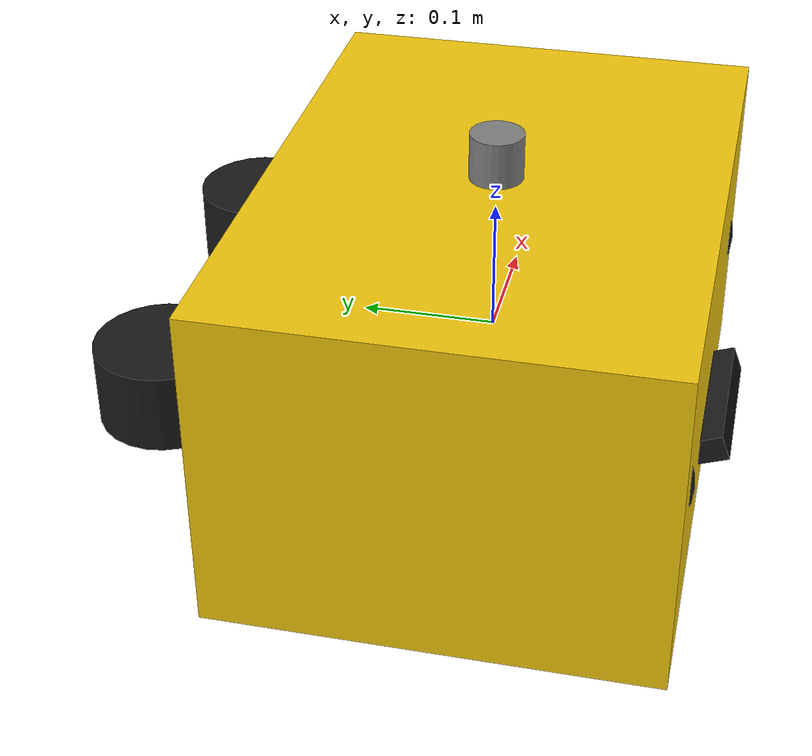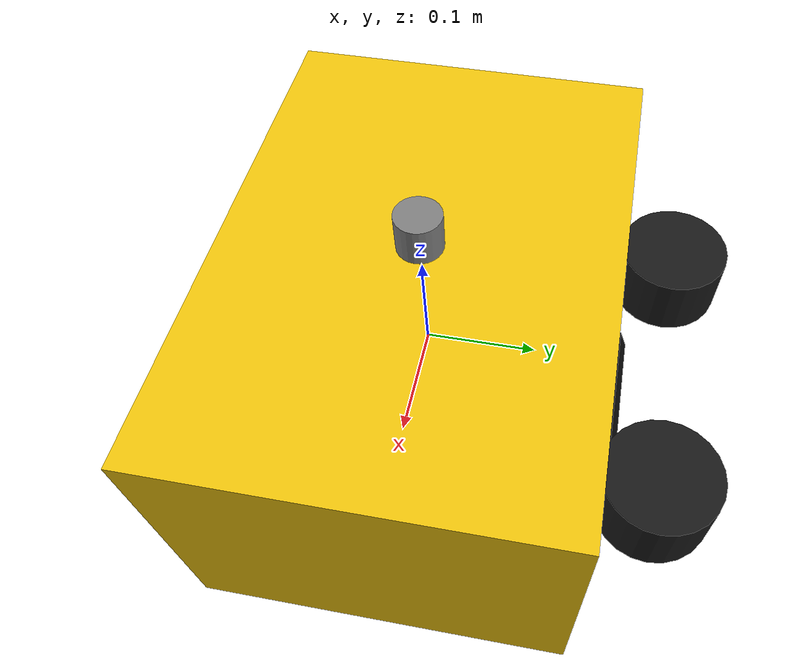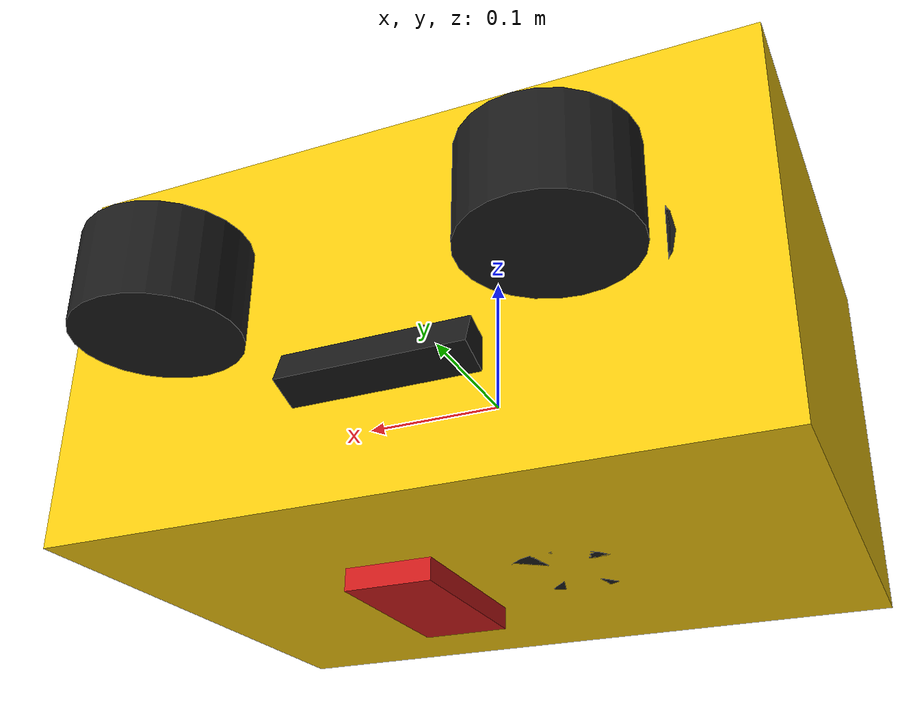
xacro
<?xml version="1.0"?>
<robot name="bluerov2" xmlns:xacro="http://www.ros.org/wiki/xacro">

  <xacro:arg name="namespace" default=""/>
  <xacro:arg name="heavy" default="false"/>       <!-- 8-thruster vectored_6dof -->
  <xacro:arg name="use_gazebo" default="false"/>  <!-- emit gz sensors + systems -->

  <xacro:property name="heavy" value="$(arg heavy)"/>

  <xacro:include filename="$(find auv_description)/urdf/common.xacro"/>
  <xacro:include filename="$(find auv_description)/urdf/sensors.xacro"/>
  <xacro:include filename="$(find auv_description)/urdf/thrusters.xacro"/>

  <!-- ===================== Vehicle body (FLU) ===================== -->
  <!-- BlueROV2 published figures: mass ~11.5 kg, near-neutral buoyancy. -->
  <xacro:property name="mass" value="11.5"/>
  <xacro:property name="hull_x" value="0.46"/>
  <xacro:property name="hull_y" value="0.33"/>
  <xacro:property name="hull_z" value="0.25"/>

  <link name="base_link">
    <xacro:box_inertia m="${mass}" x="${hull_x}" y="${hull_y}" z="${hull_z}"/>
    <visual>
      <geometry><box size="${hull_x} ${hull_y} ${hull_z}"/></geometry>
      <material name="auv_yellow"/>
    </visual>
    <collision>
      <geometry><box size="${hull_x} ${hull_y} ${hull_z}"/></geometry>
    </collision>
  </link>

  <!-- Static FRD mirror of base_link for marine-convention consumers (spec §4).
       FLU -> FRD is a 180 deg roll (y,z flip). -->
  <link name="base_link_frd"><xacro:negligible_inertia/></link>
  <joint name="base_link_frd_joint" type="fixed">
    <parent link="base_link"/><child link="base_link_frd"/>
    <origin xyz="0 0 0" rpy="${pi} 0 0"/>
  </joint>

  <!-- ===================== Sensors ===================== -->
  <xacro:imu_link parent="base_link"/>
  <xacro:pressure_link parent="base_link"/>
  <xacro:dvl_link parent="base_link"/>
  <xacro:usbl_link parent="base_link"/>
  <xacro:camera_link name="camera_left"  parent="base_link" xyz="0.20  0.06 0.0"/>
  <xacro:camera_link name="camera_right" parent="base_link" xyz="0.20 -0.06 0.0"/>
  <xacro:fls_link parent="base_link"/>
  <xacro:sss_link parent="base_link" side="port" xyz="0.0  0.17 -0.05" rpy="${pi/2 + 0.35} 0 0"/>
  <xacro:sss_link parent="base_link" side="stbd" xyz="0.0 -0.17 -0.05" rpy="${-pi/2 - 0.35} 0 0"/>
  <xacro:mbes_link parent="base_link"/>

  <!-- ===================== Thrusters ===================== -->
  <xacro:if value="${heavy}">
    <xacro:thrusters_vectored8/>
  </xacro:if>
  <xacro:unless value="${heavy}">
    <xacro:thrusters_vectored6/>
  </xacro:unless>

  <!-- ===================== Gazebo-only tags ===================== -->
  <xacro:if value="$(arg use_gazebo)">
    <xacro:include filename="$(find auv_description)/urdf/bluerov2.gazebo.xacro"/>
  </xacro:if>
</robot>

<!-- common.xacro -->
<robot xmlns:xacro="http://www.ros.org/wiki/xacro">
  <!-- Shared materials and inertia helper macros. -->

  <material name="auv_yellow"><color rgba="0.95 0.78 0.05 1.0"/></material>
  <material name="auv_black"><color rgba="0.1 0.1 0.1 1.0"/></material>
  <material name="auv_blue"><color rgba="0.1 0.3 0.8 1.0"/></material>
  <material name="auv_grey"><color rgba="0.5 0.5 0.5 1.0"/></material>
  <material name="sensor_red"><color rgba="0.8 0.1 0.1 1.0"/></material>

  <!-- Solid box inertia about its center. -->
  <xacro:macro name="box_inertia" params="m x y z">
    <inertial>
      <mass value="${m}"/>
      <inertia ixx="${m*(y*y+z*z)/12.0}" ixy="0.0" ixz="0.0"
               iyy="${m*(x*x+z*z)/12.0}" iyz="0.0"
               izz="${m*(x*x+y*y)/12.0}"/>
    </inertial>
  </xacro:macro>

  <!-- Solid cylinder inertia about its center, axis along z. -->
  <xacro:macro name="cylinder_inertia" params="m r h">
    <inertial>
      <mass value="${m}"/>
      <inertia ixx="${m*(3*r*r+h*h)/12.0}" ixy="0.0" ixz="0.0"
               iyy="${m*(3*r*r+h*h)/12.0}" iyz="0.0"
               izz="${m*r*r/2.0}"/>
    </inertial>
  </xacro:macro>

  <!-- Tiny inertia for massless sensor links (keeps SDF/Gazebo happy). -->
  <xacro:macro name="negligible_inertia" params="m:=0.001">
    <inertial>
      <mass value="${m}"/>
      <inertia ixx="1e-6" ixy="0" ixz="0" iyy="1e-6" iyz="0" izz="1e-6"/>
    </inertial>
  </xacro:macro>
</robot>

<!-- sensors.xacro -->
<robot xmlns:xacro="http://www.ros.org/wiki/xacro">

  <xacro:macro name="imu_link" params="parent xyz:='0 0 0.02' rpy:='0 0 0'">
    <link name="imu_link"><xacro:negligible_inertia/>
      <visual><geometry><box size="0.03 0.03 0.01"/></geometry><material name="sensor_red"/></visual>
    </link>
    <joint name="imu_joint" type="fixed"><parent link="${parent}"/><child link="imu_link"/>
      <origin xyz="${xyz}" rpy="${rpy}"/></joint>
  </xacro:macro>

  <xacro:macro name="pressure_link" params="parent xyz:='-0.1 0 0.0' rpy:='0 0 0'">
    <link name="pressure_link"><xacro:negligible_inertia/>
      <visual><geometry><cylinder radius="0.01" length="0.02"/></geometry><material name="auv_grey"/></visual>
    </link>
    <joint name="pressure_joint" type="fixed"><parent link="${parent}"/><child link="pressure_link"/>
      <origin xyz="${xyz}" rpy="${rpy}"/></joint>
  </xacro:macro>

  <!-- DVL: 4 downward beams. Sensor frame is FLU-aligned here; conversion handled in driver. -->
  <xacro:macro name="dvl_link" params="parent xyz:='-0.05 0 -0.10' rpy:='0 0 0'">
    <link name="dvl_link"><xacro:negligible_inertia/>
      <visual><geometry><cylinder radius="0.04" length="0.05"/></geometry><material name="auv_black"/></visual>
    </link>
    <joint name="dvl_joint" type="fixed"><parent link="${parent}"/><child link="dvl_link"/>
      <origin xyz="${xyz}" rpy="${rpy}"/></joint>
  </xacro:macro>

  <xacro:macro name="usbl_link" params="parent xyz:='0.0 0 0.12' rpy:='0 0 0'">
    <link name="usbl_link"><xacro:negligible_inertia/>
      <visual><geometry><cylinder radius="0.02" length="0.08"/></geometry><material name="auv_grey"/></visual>
    </link>
    <joint name="usbl_joint" type="fixed"><parent link="${parent}"/><child link="usbl_link"/>
      <origin xyz="${xyz}" rpy="${rpy}"/></joint>
  </xacro:macro>

  <!-- Camera: creates a body link and an optical link (REP-103 optical frame:
       z-forward, x-right, y-down) rotated from the body link. -->
  <xacro:macro name="camera_link" params="name parent xyz rpy:='0 0 0'">
    <link name="${name}_link"><xacro:negligible_inertia/>
      <visual><geometry><box size="0.02 0.04 0.03"/></geometry><material name="auv_blue"/></visual>
    </link>
    <joint name="${name}_joint" type="fixed"><parent link="${parent}"/><child link="${name}_link"/>
      <origin xyz="${xyz}" rpy="${rpy}"/></joint>
    <link name="${name}_optical_link"><xacro:negligible_inertia/></link>
    <joint name="${name}_optical_joint" type="fixed">
      <parent link="${name}_link"/><child link="${name}_optical_link"/>
      <!-- body(FLU) -> optical(RDF): -90 about z then -90 about x -->
      <origin xyz="0 0 0" rpy="${-pi/2} 0 ${-pi/2}"/></joint>
  </xacro:macro>

  <!-- Forward-looking sonar. DAVE multibeam needs an FRD sensor frame, so the
       link is rotated to X-forward, Y-starboard, Z-down relative to base_link(FLU). -->
  <xacro:macro name="fls_link" params="parent xyz:='0.18 0 -0.02' rpy:='${pi} 0 0'">
    <link name="fls_link"><xacro:negligible_inertia/>
      <visual><geometry><box size="0.04 0.10 0.05"/></geometry><material name="sensor_red"/></visual>
    </link>
    <joint name="fls_joint" type="fixed"><parent link="${parent}"/><child link="fls_link"/>
      <origin xyz="${xyz}" rpy="${rpy}"/></joint>
  </xacro:macro>

  <!-- Side-scan sonar, port + starboard, looking outward/down. -->
  <xacro:macro name="sss_link" params="parent side xyz rpy">
    <link name="sss_${side}_link"><xacro:negligible_inertia/>
      <visual><geometry><box size="0.12 0.02 0.03"/></geometry><material name="auv_black"/></visual>
    </link>
    <joint name="sss_${side}_joint" type="fixed"><parent link="${parent}"/><child link="sss_${side}_link"/>
      <origin xyz="${xyz}" rpy="${rpy}"/></joint>
  </xacro:macro>

  <!-- Multibeam echosounder (bathymetry), downward. FRD per DAVE requirement. -->
  <xacro:macro name="mbes_link" params="parent xyz:='0.05 0 -0.12' rpy:='${pi} 0 0'">
    <link name="mbes_link"><xacro:negligible_inertia/>
      <visual><geometry><box size="0.06 0.12 0.04"/></geometry><material name="sensor_red"/></visual>
    </link>
    <joint name="mbes_joint" type="fixed"><parent link="${parent}"/><child link="mbes_link"/>
      <origin xyz="${xyz}" rpy="${rpy}"/></joint>
  </xacro:macro>
</robot>

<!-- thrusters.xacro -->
<robot xmlns:xacro="http://www.ros.org/wiki/xacro">

  <xacro:macro name="thruster" params="id xyz rpy:='0 0 0'">
    <link name="thruster${id}"><xacro:negligible_inertia m="0.05"/>
      <visual>
        <origin xyz="0 0 0" rpy="0 ${pi/2} 0"/>
        <geometry><cylinder radius="0.05" length="0.06"/></geometry>
        <material name="auv_black"/>
      </visual>
    </link>
    <joint name="thruster${id}_joint" type="fixed">
      <parent link="base_link"/><child link="thruster${id}"/>
      <origin xyz="${xyz}" rpy="${rpy}"/>
    </joint>
  </xacro:macro>

  <!-- Standard vectored 6-thruster BlueROV2 layout.
       T1-T4: horizontal, vectored at +/-45 deg. T5-T6: vertical. -->
  <xacro:macro name="thrusters_vectored6" params="">
    <xacro:thruster id="1" xyz=" 0.156  0.111 0.0" rpy="0 0 ${-pi/4}"/>
    <xacro:thruster id="2" xyz=" 0.156 -0.111 0.0" rpy="0 0 ${pi/4}"/>
    <xacro:thruster id="3" xyz="-0.156  0.111 0.0" rpy="0 0 ${pi/4}"/>
    <xacro:thruster id="4" xyz="-0.156 -0.111 0.0" rpy="0 0 ${-pi/4}"/>
    <xacro:thruster id="5" xyz=" 0.120  0.218 0.0" rpy="0 ${pi/2} 0"/>
    <xacro:thruster id="6" xyz="-0.120  0.218 0.0" rpy="0 ${pi/2} 0"/>
  </xacro:macro>

  <!-- Heavy (vectored_6dof) 8-thruster layout: 4 vectored horizontal + 4 vertical. -->
  <xacro:macro name="thrusters_vectored8" params="">
    <xacro:thruster id="1" xyz=" 0.156  0.111 0.0" rpy="0 0 ${-pi/4}"/>
    <xacro:thruster id="2" xyz=" 0.156 -0.111 0.0" rpy="0 0 ${pi/4}"/>
    <xacro:thruster id="3" xyz="-0.156  0.111 0.0" rpy="0 0 ${pi/4}"/>
    <xacro:thruster id="4" xyz="-0.156 -0.111 0.0" rpy="0 0 ${-pi/4}"/>
    <xacro:thruster id="5" xyz=" 0.120  0.218 0.085" rpy="0 ${pi/2} 0"/>
    <xacro:thruster id="6" xyz=" 0.120 -0.218 0.085" rpy="0 ${pi/2} 0"/>
    <xacro:thruster id="7" xyz="-0.120  0.218 0.085" rpy="0 ${pi/2} 0"/>
    <xacro:thruster id="8" xyz="-0.120 -0.218 0.085" rpy="0 ${pi/2} 0"/>
  </xacro:macro>
</robot>
